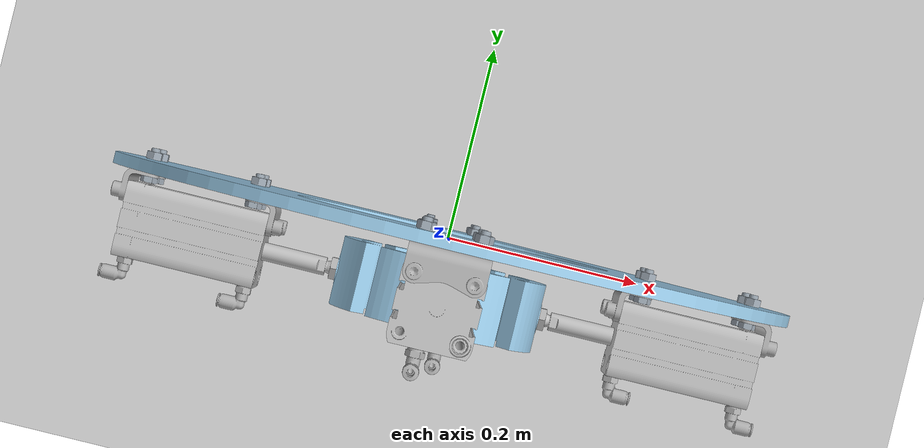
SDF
<?xml version="1.0" ?>
<sdf version="1.8">
  <world name="demo">
    <plugin
      filename="gz-sim-physics-system"
      name="gz::sim::systems::Physics">
    </plugin>
    <plugin
      filename="gz-sim-sensors-system"
      name="gz::sim::systems::Sensors">
      <render_engine>ogre2</render_engine>
    </plugin>
    <plugin
      filename="gz-sim-scene-broadcaster-system"
      name="gz::sim::systems::SceneBroadcaster">
    </plugin>
    <plugin
      filename="gz-sim-user-commands-system"
      name="gz::sim::systems::UserCommands">
    </plugin>
    <plugin
      filename="BasicSystem"
      name="gazebo::BasicSystem">
    </plugin>
    <plugin
      filename="FullSystem"
      name="gazebo::FullSystem">
    </plugin>

    <light name="sun" type="directional">
      <cast_shadows>true</cast_shadows>
      <pose>0 0 10 0 0 0</pose>
      <diffuse>0.8 0.8 0.8 1</diffuse>
      <specular>0.2 0.2 0.2 1</specular>
      <attenuation>
        <range>1000</range>
        <constant>0.9</constant>
        <linear>0.01</linear>
        <quadratic>0.001</quadratic>
      </attenuation>
      <direction>-0.5 0.1 -0.9</direction>
    </light>

    <model name="ground_plane">
      <static>true</static>
      <link name="link">
        <collision name="collision">
          <geometry>
            <plane>
              <normal>0 0 1</normal>
              <size>100 100</size>
            </plane>
          </geometry>
        </collision>
        <visual name="visual">
          <geometry>
            <plane>
              <normal>0 0 1</normal>
              <size>100 100</size>
            </plane>
          </geometry>
          <material>
            <ambient>0.8 0.8 0.8 1</ambient>
            <diffuse>0.8 0.8 0.8 1</diffuse>
            <specular>0.8 0.8 0.8 1</specular>
          </material>
        </visual>
      </link>
    </model>

    <model name="base_plate">
      <self_collide>true</self_collide>
      <pose>0 0 0.35 0 0 0</pose>
      <include merge="true">
        <uri>package://model_description/models/base_plate</uri>
      </include>

      <plugin
        filename="gz-sim-joint-state-publisher-system"
        name="gz::sim::systems::JointStatePublisher">
      </plugin>

      <plugin
        filename="gz-sim-pose-publisher-system"
        name="gz::sim::systems::PosePublisher">
        <publish_link_pose>true</publish_link_pose>
        <use_pose_vector_msg>true</use_pose_vector_msg>
        <static_publisher>true</static_publisher>
        <static_update_frequency>1</static_update_frequency>
      </plugin>
    </model>

  </world>
</sdf>
